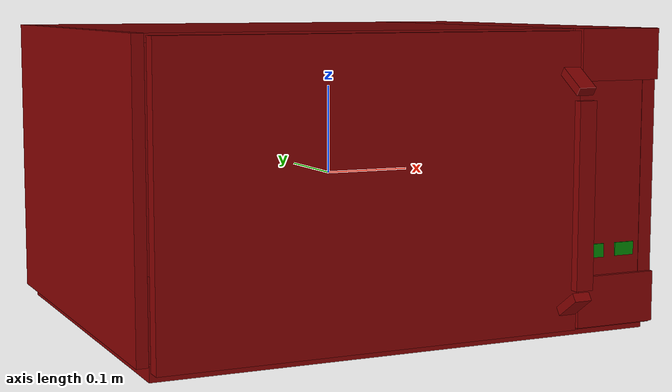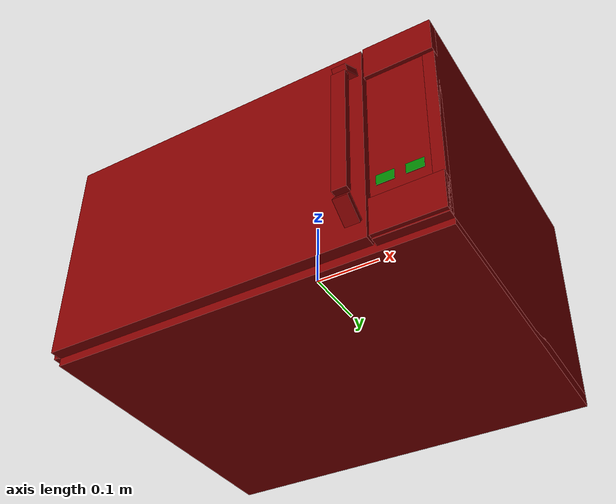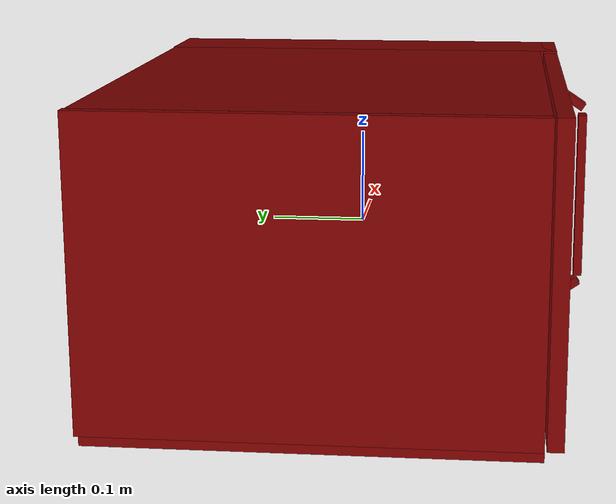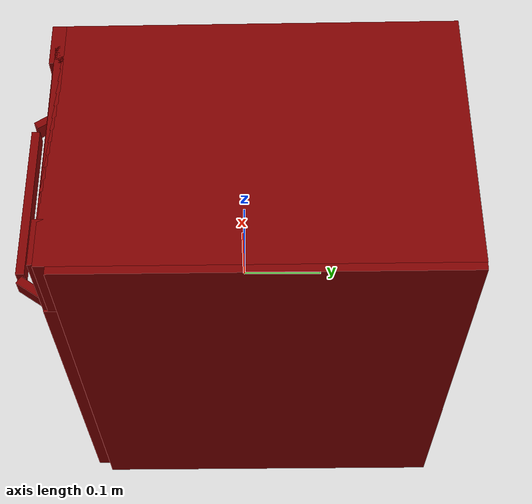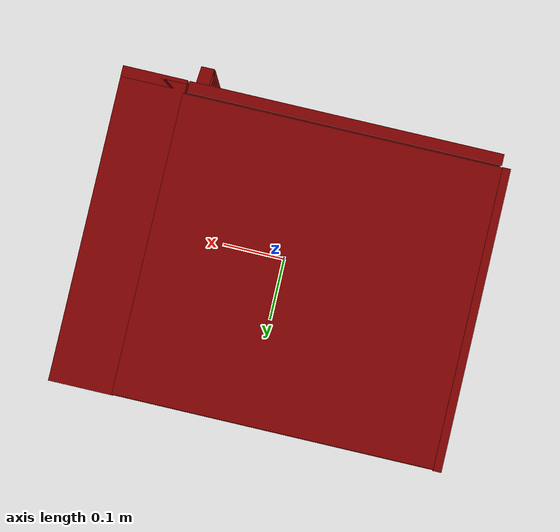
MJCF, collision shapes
<?xml version='1.0' encoding='UTF-8'?>
<mujoco model="model">
  <option timestep="0.002" gravity="0.0 0.0 -9.81"/>
  <compiler angle="radian"/>
  <asset>
    <mesh file="visuals/door.obj" name="door_vis"/>
    <mesh file="visuals/door_Clear.obj" name="door_Clear_vis"/>
    <mesh file="visuals/Body001.obj" name="Body001_vis"/>
    <mesh file="visuals/Disc001.obj" name="Disc001_vis"/>
    <texture file="visuals/T_BC001.png" name="Body001_material" type="2d"/>
    <material name="Body001_material" rgba="1 1 1 1.0" texture="Body001_material" shininess="1" specular="1"/>
    <texture file="visuals/T_BC001.png" name="door_material" type="2d"/>
    <material name="door_material" rgba="1 1 1 1.0" texture="door_material" shininess="1" specular="1"/>
    <material name="door_Clear_material" rgba="0.03274917975068092 0.03274917975068092 0.03274917975068092 0.75" shininess="0.5" specular="0.3103448502657381"/>
    <texture file="visuals/T_BC001.png" name="Disc001_material" type="2d"/>
    <material name="Disc001_material" rgba="1 1 1 1.0" texture="Disc001_material" shininess="0.5" specular="0.5"/>
  </asset>
  <default>
    <default class="visual">
      <geom conaffinity="0" contype="0" group="1" type="mesh"/>
    </default>
    <default class="collision">
      <geom group="0" rgba="0.5 0 0 0.5"/>
    </default>
    <default class="spawn">
      <geom group="0" rgba="1 1 1 0.5" contype="0" conaffinity="0"/>
      <site group="0" rgba="1 1 1 0.5"/>
    </default>
    <default class="region">
      <geom group="1" conaffinity="0" contype="0" rgba="0 1 0 0"/>
    </default>
  </default>
  <worldbody>
    <body>
      <body name="object">
        <geom class="collision" type="cylinder" pos="-0.025841910392045975 0.02752542868256569 -0.13177061080932617" size="0.14415886998176575 0.0017355717718601227" quat="1.0 0.0 0.0 0.0" name="tray" rgba="0 1 0 0.5"/>
        <geom class="collision" type="box" pos="0.21851958334445953 -0.21442283689975739 -0.07277726382017136" size="0.012191889807581902 0.0006326315924525261 0.007464029360562563" quat="1.0 0.0 0.0 0.0" name="start_button" rgba="0.0 0.5 0 0.5"/>
        <geom class="collision" type="box" pos="0.25762587785720825 -0.21442283689975739 -0.07270079106092453" size="0.012026677839457989 0.0006326315924525261 0.007251610513776541" quat="1.0 0.0 0.0 0.0" name="stop_button" rgba="0.0 0.5 0 0.5"/>
        <geom mesh="Body001_vis" type="mesh" solimp="0.998 0.998 0.001" solref="0.001 1" friction="0.95 0.3 0.1" class="visual" material="Body001_material"/>
        <geom class="collision" type="box" pos="0.2454523742198944 0.021219104528427124 0.0047724987380206585" size="0.048628997057676315 0.23400364816188812 0.1628241240978241" quat="1.0 0.0 0.0 0.0"/>
        <geom class="collision" type="box" pos="-0.040900152176618576 0.02757795713841915 0.16311413049697876" size="0.2404986172914505 0.22596187889575958 0.004482507240027189" quat="1.0 0.0 0.0 0.0"/>
        <geom class="collision" type="box" pos="0.006341286934912205 0.02757795713841915 -0.15793824195861816" size="0.2877400517463684 0.22713766992092133 0.009358012117445469" quat="1.0 0.0 0.0 0.0"/>
        <geom class="collision" type="box" pos="-0.040900152176618576 0.23707318305969238 0.0026901462115347385" size="0.2404986172914505 0.018563205376267433 0.1558283269405365" quat="1.0 0.0 0.0 0.0"/>
        <geom class="collision" type="box" pos="0.24528588354587555 -0.21021264791488647 0.13980557024478912" size="0.04879549518227577 0.008227323181927204 0.027791054919362068" quat="1.0 0.0 0.0 0.0"/>
        <geom class="collision" type="box" pos="0.24528588354587555 -0.21021275222301483 -0.12788578867912292" size="0.04879549518227577 0.008227426558732986 0.02793305739760399" quat="1.0 0.0 0.0 0.0"/>
        <geom class="collision" type="box" pos="0.28593844175338745 -0.2076762467622757 0.006967904977500439" size="0.008142951875925064 0.005690917372703552 0.107062429189682" quat="1.0 0.0 0.0 0.0"/>
        <geom class="collision" type="box" pos="-0.2878084182739258 0.028277277946472168 0.007530886214226484" size="0.0062729655764997005 0.2273591160774231 0.16006574034690857" quat="1.0 0.0 0.0 0.0"/>
        <body name="door">
          <joint axis="0.0 0.0 1.0" pos="-0.28208696842193604 -0.20887592434883118 0.004690677393227816" limited="true" name="microjoint" range="-1.5707963267948966 0.0" type="hinge" damping="1" frictionloss="1" armature=".01" stiffness="0.05"/>
          <geom mesh="door_vis" type="mesh" solimp="0.998 0.998 0.001" solref="0.001 1" friction="0.95 0.3 0.1" class="visual" material="door_material"/>
          <geom class="collision" type="box" pos="-0.055400121957063675 -0.20815110206604004 0.0025454165879637003" size="0.18267448246479034 0.004317346960306168 0.09932829439640045" quat="7.549790126404332e-08 0.0 1.0 0.0"/>
          <geom class="collision" type="box" pos="-0.043309882283210754 -0.21012641489505768 0.004172295331954956" size="0.23701034486293793 0.008313394151628017 0.16133543848991394" quat="7.549790126404332e-08 0.0 1.0 0.0"/>
          <geom class="collision" type="box" pos="0.17871640622615814 -0.2364930361509323 0.11349785327911377" size="0.010124575346708298 0.004987041000276804 0.018044136464595795" quat="8.718726718370817e-08 -2.9999298600813518e-09 -0.8821341395378113 0.47099828720092773"/>
          <geom class="collision" type="box" pos="0.17871640622615814 -0.2364930361509323 -0.12358104437589645" size="0.010124575346708298 0.004987041000276804 0.018044134601950645" quat="6.690606824122369e-08 -3.497871503554961e-08 -0.46330711245536804 0.8861978054046631"/>
          <geom class="collision" type="box" pos="0.17871640622615814 -0.25084638595581055 -0.0060597932897508144" size="0.010124575346708298 0.004987041000276804 0.10011334717273712" quat="7.549790126404332e-08 0.0 1.0 0.0" name="door_handle_main"/>
          <geom class="collision" type="box" pos="-0.043309882283210754 -0.21274343132972717 0.004172295331954956" size="0.23339352011680603 0.003128930227831006 0.15577706694602966" quat="7.549790126404332e-08 0.0 1.0 0.0" name="door_main"/>
          <body name="door_Clear">
            <geom mesh="door_Clear_vis" type="mesh" solimp="0.998 0.998 0.001" solref="0.001 1" friction="0.95 0.3 0.1" class="visual" material="door_Clear_material"/>
            <geom class="collision" type="box" pos="-0.055400121957063675 -0.20815110206604004 0.0025454165879637003" size="0.18267448246479034 0.004317346960306168 0.09932829439640045" quat="7.549790126404332e-08 0.0 1.0 0.0"/>
          </body>
        </body>
        <body name="Disc001">
          <joint axis="0.0 0.0 1.0" pos="-0.026214128360152245 0.027957405894994736 -0.13701212406158447" limited="false" name="Disc001_joint" range="0 360" type="hinge" damping="1" frictionloss="1" armature=".01" stiffness="0.05"/>
          <geom mesh="Disc001_vis" type="mesh" solimp="0.998 0.998 0.001" solref="0.001 1" friction="0.95 0.3 0.1" class="visual" material="Disc001_material"/>
          <geom class="collision" type="cylinder" pos="-0.025841910392045975 0.02752542868256569 -0.13973897695541382" size="0.14415886998176575 0.003326639998704195" quat="1.0 0.0 0.0 0.0"/>
        </body>
        <geom class="region" name="reg_int" type="box" pos="-0.04239501804113388 0.010837137699127197 0.01091119647026062" size="0.23366292363405228 0.2086728790998459 0.1419461498260498"/>
        <geom class="region" name="reg_main" type="box" pos="-7.450580596923828e-09 0.01859828643500805 0.0" size="0.29508136010169983 0.23803810572624207 0.16859662330150604"/>
      <geom class="region" name="reg_tray" type="cylinder" pos="-0.025841910392045975 0.02752542868256569 0.011411153629422188" size="0.14415886998176575 0.14044619266688824"/></body>
    </body>
  </worldbody>
  <actuator>
    <motor name="microjoint_actuator" joint="microjoint" gear="10"/>
    <motor name="Disc001_joint_actuator" joint="Disc001_joint" gear="10"/>
  </actuator>
</mujoco>
